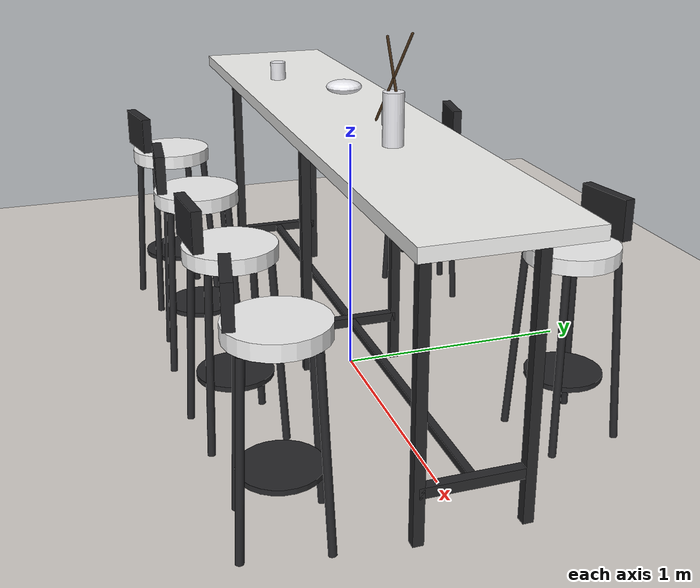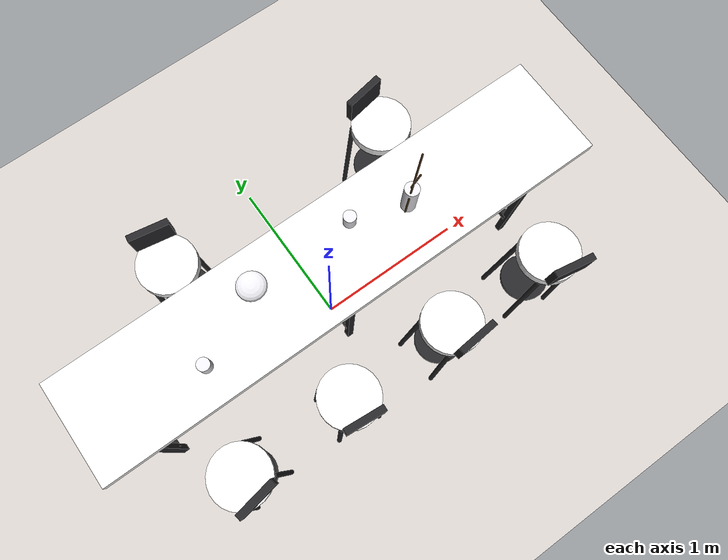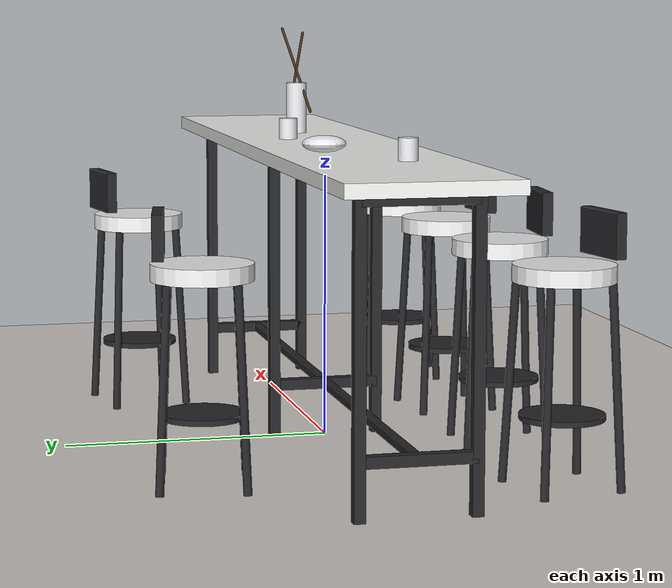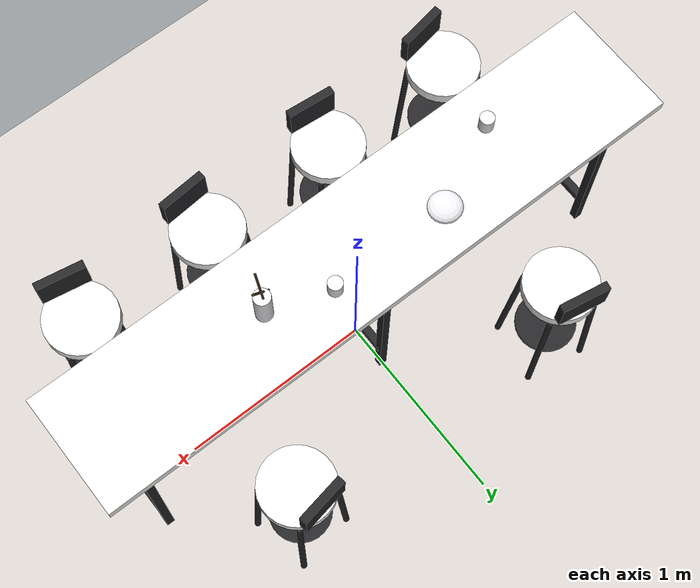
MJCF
<mujoco model="cafe_long_table">
  <compiler angle="degree" coordinate="local" inertiafromgeom="true" autolimits="true"/>
  <option timestep="0.002" gravity="0 0 -9.81"/>

  <!-- 1. 模型优化与画质提升设置 -->
  <visual>
    <!-- 4K级分辨率输出能力与抗锯齿 -->
    <global offwidth="3840" offheight="2160" fovy="45"/>
    <!-- 提升阴影质量与细节 -->
    <quality shadowsize="4096" offsamples="8"/>
    <!-- 优化光照模型与雾效 -->
    <headlight ambient="0.3 0.3 0.3" diffuse="0.4 0.4 0.4" specular="0.1 0.1 0.1"/>
    <map znear="0.01" zfar="100" shadowscale="0.5"/>
  </visual>

  <statistic extent="4" center="0 0 1"/>

  <asset>
    <!-- 纹理优化：使用高分辨率设置 -->
    <texture name="tex_white_smooth" type="2d" builtin="flat" rgb1="0.96 0.96 0.95" width="1024" height="1024"/> <!-- 提升至1K纹理 -->
    <texture name="tex_metal_black" type="2d" builtin="flat" rgb1="0.15 0.15 0.16" width="1024" height="1024"/>
    <texture name="tex_ceramic" type="2d" builtin="flat" rgb1="0.92 0.92 0.94" width="1024" height="1024"/>

    <!-- 材质物理属性优化：增强真实感 -->
    <!-- 桌面：增加微弱反射，模拟高档涂层 -->
    <material name="mat_table_top" texture="tex_white_smooth" reflectance="0.2" shininess="0.3" specular="0.3"/>
    <!-- 金属：增加高光与对比度，模拟烤漆质感 -->
    <material name="mat_frame" texture="tex_metal_black" reflectance="0.3" shininess="0.7" specular="0.8"/>
    <!-- 布艺：低反光，增加粗糙感 -->
    <material name="mat_cushion" rgba="0.95 0.95 0.95 1" reflectance="0.05" shininess="0.1"/>
    <!-- 陶瓷：高光泽，强反射 -->
    <material name="mat_ceramic" texture="tex_ceramic" reflectance="0.6" shininess="0.9" specular="0.9"/>
  </asset>

  <worldbody>
    <!-- 2. 光照系统升级：专业影棚布光 -->
    <!-- 主光 (Key Light)：提供主要照明和阴影 -->
    <light name="key_light" pos="-2 -3 4" dir="0.5 0.6 -0.8" diffuse="0.9 0.85 0.8" specular="0.4 0.4 0.4" castshadow="true" cutoff="60" attenuation="0.5 0 0.1"/>

    <!-- 补光 (Fill Light)：柔化阴影，提供环境色 -->
    <light name="fill_light" pos="3 2 3" dir="-0.6 -0.4 -0.6" diffuse="0.3 0.35 0.4" specular="0.1 0.1 0.1" castshadow="false" attenuation="0.5 0 0.1"/>

    <!-- 轮廓光 (Back Light)：勾勒物体边缘，增加立体感 -->
    <light name="back_light" pos="0 4 3" dir="0 -0.8 -0.6" diffuse="0.4 0.4 0.35" specular="0.3 0.3 0.3" castshadow="false" attenuation="0.5 0 0.1"/>

    <!-- Floor Optimization -->
    <geom name="floor" type="plane" pos="0 0 0" size="5 4 0.1" rgba="0.82 0.80 0.78 1" material="mat_table_top"/>

    <!-- ================= TABLE ================= -->
    <body name="table" pos="0 0 0">
        <!-- Table Top: 3m long, 0.6m wide, 1.1m high (bar height) -->
        <geom name="table_top" type="box" pos="0 0 1.1" size="1.5 0.3 0.025" material="mat_table_top"/>

        <!-- Legs: 3 sets (Left, Center, Right) -->

        <!-- Left Leg Frame -->
        <body name="leg_frame_left" pos="-1.3 0 0">
            <geom name="l_post1" type="box" pos="0 -0.2 0.55" size="0.02 0.02 0.55" material="mat_frame"/>
            <geom name="l_post2" type="box" pos="0 0.2 0.55" size="0.02 0.02 0.55" material="mat_frame"/>
            <geom name="l_top_bar" type="box" pos="0 0 1.05" size="0.02 0.2 0.02" material="mat_frame"/>
            <geom name="l_bot_bar" type="box" pos="0 0 0.2" size="0.02 0.2 0.02" material="mat_frame"/>
        </body>

        <!-- Right Leg Frame -->
        <body name="leg_frame_right" pos="1.3 0 0">
            <geom name="r_post1" type="box" pos="0 -0.2 0.55" size="0.02 0.02 0.55" material="mat_frame"/>
            <geom name="r_post2" type="box" pos="0 0.2 0.55" size="0.02 0.02 0.55" material="mat_frame"/>
            <geom name="r_top_bar" type="box" pos="0 0 1.05" size="0.02 0.2 0.02" material="mat_frame"/>
            <geom name="r_bot_bar" type="box" pos="0 0 0.2" size="0.02 0.2 0.02" material="mat_frame"/>
        </body>

        <!-- Center Leg Frame -->
        <body name="leg_frame_center" pos="0 0 0">
            <geom name="c_post1" type="box" pos="0 -0.2 0.55" size="0.02 0.02 0.55" material="mat_frame"/>
            <geom name="c_post2" type="box" pos="0 0.2 0.55" size="0.02 0.02 0.55" material="mat_frame"/>
            <geom name="c_bot_bar" type="box" pos="0 0 0.2" size="0.02 0.2 0.02" material="mat_frame"/>
        </body>

        <!-- Long Connecting Beam (Bottom) -->
        <geom name="long_beam" type="box" pos="0 0 0.2" size="1.3 0.015 0.015" material="mat_frame"/>

        <!-- Decor -->
        <body name="decor" pos="0 0 1.125">
             <geom name="vase" type="cylinder" pos="0.5 0 0.1" size="0.04 0.1" material="mat_ceramic"/>
             <geom name="branch1" type="capsule" pos="0.5 0 0.25" size="0.005 0.15" euler="10 0 0" rgba="0.3 0.2 0.1 1"/>
             <geom name="branch2" type="capsule" pos="0.5 0 0.25" size="0.005 0.18" euler="-15 20 0" rgba="0.3 0.2 0.1 1"/>

             <geom name="bowl_stack" type="ellipsoid" pos="-0.4 0.1 0.03" size="0.08 0.08 0.03" material="mat_ceramic"/>
             <geom name="cup1" type="cylinder" pos="-0.8 -0.1 0.04" size="0.035 0.04" material="mat_ceramic"/>
             <geom name="cup2" type="cylinder" pos="0.2 0.1 0.04" size="0.035 0.04" material="mat_ceramic"/>
        </body>
    </body>

    <!-- ================= STOOLS ================= -->

    <!-- Stool 1 -->
    <body name="stool1" pos="-1.0 -0.6 0" euler="0 0 10">
        <geom name="s1_seat" type="cylinder" pos="0 0 0.75" size="0.18 0.03" material="mat_cushion"/>
        <geom name="s1_back" type="box" pos="0 -0.15 0.88" size="0.12 0.02 0.08" material="mat_frame"/>
        <geom name="s1_l1" type="cylinder" fromto="-0.15 -0.15 0   -0.12 -0.12 0.72" size="0.015" material="mat_frame"/>
        <geom name="s1_l2" type="cylinder" fromto=" 0.15 -0.15 0    0.12 -0.12 0.72" size="0.015" material="mat_frame"/>
        <geom name="s1_l3" type="cylinder" fromto="-0.15  0.15 0   -0.12  0.12 0.72" size="0.015" material="mat_frame"/>
        <geom name="s1_l4" type="cylinder" fromto=" 0.15  0.15 0    0.12  0.12 0.72" size="0.015" material="mat_frame"/>
        <geom name="s1_ring" type="cylinder" pos="0 0 0.25" size="0.15 0.01" material="mat_frame"/>
    </body>

    <!-- Stool 2 -->
    <body name="stool2" pos="-0.3 -0.6 0" euler="0 0 -5">
        <geom name="s2_seat" type="cylinder" pos="0 0 0.75" size="0.18 0.03" material="mat_cushion"/>
        <geom name="s2_back" type="box" pos="0 -0.15 0.88" size="0.12 0.02 0.08" material="mat_frame"/>
        <geom name="s2_l1" type="cylinder" fromto="-0.15 -0.15 0   -0.12 -0.12 0.72" size="0.015" material="mat_frame"/>
        <geom name="s2_l2" type="cylinder" fromto=" 0.15 -0.15 0    0.12 -0.12 0.72" size="0.015" material="mat_frame"/>
        <geom name="s2_l3" type="cylinder" fromto="-0.15  0.15 0   -0.12  0.12 0.72" size="0.015" material="mat_frame"/>
        <geom name="s2_l4" type="cylinder" fromto=" 0.15  0.15 0    0.12  0.12 0.72" size="0.015" material="mat_frame"/>
        <geom name="s2_ring" type="cylinder" pos="0 0 0.25" size="0.15 0.01" material="mat_frame"/>
    </body>

    <!-- Stool 3 -->
    <body name="stool3" pos="0.4 -0.6 0" euler="0 0 5">
        <geom name="s3_seat" type="cylinder" pos="0 0 0.75" size="0.18 0.03" material="mat_cushion"/>
        <geom name="s3_back" type="box" pos="0 -0.15 0.88" size="0.12 0.02 0.08" material="mat_frame"/>
        <geom name="s3_l1" type="cylinder" fromto="-0.15 -0.15 0   -0.12 -0.12 0.72" size="0.015" material="mat_frame"/>
        <geom name="s3_l2" type="cylinder" fromto=" 0.15 -0.15 0    0.12 -0.12 0.72" size="0.015" material="mat_frame"/>
        <geom name="s3_l3" type="cylinder" fromto="-0.15  0.15 0   -0.12  0.12 0.72" size="0.015" material="mat_frame"/>
        <geom name="s3_l4" type="cylinder" fromto=" 0.15  0.15 0    0.12  0.12 0.72" size="0.015" material="mat_frame"/>
        <geom name="s3_ring" type="cylinder" pos="0 0 0.25" size="0.15 0.01" material="mat_frame"/>
    </body>

    <!-- Stool 4 -->
    <body name="stool4" pos="1.1 -0.6 0" euler="0 0 -10">
        <geom name="s4_seat" type="cylinder" pos="0 0 0.75" size="0.18 0.03" material="mat_cushion"/>
        <geom name="s4_back" type="box" pos="0 -0.15 0.88" size="0.12 0.02 0.08" material="mat_frame"/>
        <geom name="s4_l1" type="cylinder" fromto="-0.15 -0.15 0   -0.12 -0.12 0.72" size="0.015" material="mat_frame"/>
        <geom name="s4_l2" type="cylinder" fromto=" 0.15 -0.15 0    0.12 -0.12 0.72" size="0.015" material="mat_frame"/>
        <geom name="s4_l3" type="cylinder" fromto="-0.15  0.15 0   -0.12  0.12 0.72" size="0.015" material="mat_frame"/>
        <geom name="s4_l4" type="cylinder" fromto=" 0.15  0.15 0    0.12  0.12 0.72" size="0.015" material="mat_frame"/>
        <geom name="s4_ring" type="cylinder" pos="0 0 0.25" size="0.15 0.01" material="mat_frame"/>
    </body>

    <!-- Stool 5 (Back side) -->
    <body name="stool5" pos="-0.7 0.6 0" euler="0 0 170">
        <geom name="s5_seat" type="cylinder" pos="0 0 0.75" size="0.18 0.03" material="mat_cushion"/>
        <geom name="s5_back" type="box" pos="0 -0.15 0.88" size="0.12 0.02 0.08" material="mat_frame"/>
        <geom name="s5_l1" type="cylinder" fromto="-0.15 -0.15 0   -0.12 -0.12 0.72" size="0.015" material="mat_frame"/>
        <geom name="s5_l2" type="cylinder" fromto=" 0.15 -0.15 0    0.12 -0.12 0.72" size="0.015" material="mat_frame"/>
        <geom name="s5_l3" type="cylinder" fromto="-0.15  0.15 0   -0.12  0.12 0.72" size="0.015" material="mat_frame"/>
        <geom name="s5_l4" type="cylinder" fromto=" 0.15  0.15 0    0.12  0.12 0.72" size="0.015" material="mat_frame"/>
        <geom name="s5_ring" type="cylinder" pos="0 0 0.25" size="0.15 0.01" material="mat_frame"/>
    </body>

    <!-- Stool 6 (Back side) -->
    <body name="stool6" pos="0.8 0.6 0" euler="0 0 190">
        <geom name="s6_seat" type="cylinder" pos="0 0 0.75" size="0.18 0.03" material="mat_cushion"/>
        <geom name="s6_back" type="box" pos="0 -0.15 0.88" size="0.12 0.02 0.08" material="mat_frame"/>
        <geom name="s6_l1" type="cylinder" fromto="-0.15 -0.15 0   -0.12 -0.12 0.72" size="0.015" material="mat_frame"/>
        <geom name="s6_l2" type="cylinder" fromto=" 0.15 -0.15 0    0.12 -0.12 0.72" size="0.015" material="mat_frame"/>
        <geom name="s6_l3" type="cylinder" fromto="-0.15  0.15 0   -0.12  0.12 0.72" size="0.015" material="mat_frame"/>
        <geom name="s6_l4" type="cylinder" fromto=" 0.15  0.15 0    0.12  0.12 0.72" size="0.015" material="mat_frame"/>
        <geom name="s6_ring" type="cylinder" pos="0 0 0.25" size="0.15 0.01" material="mat_frame"/>
    </body>

  </worldbody>
</mujoco>
